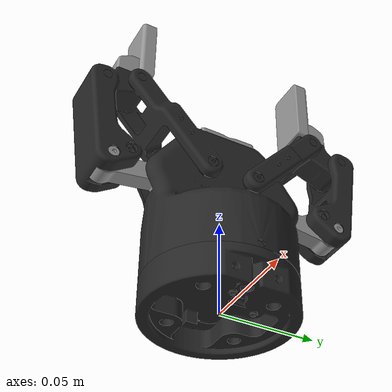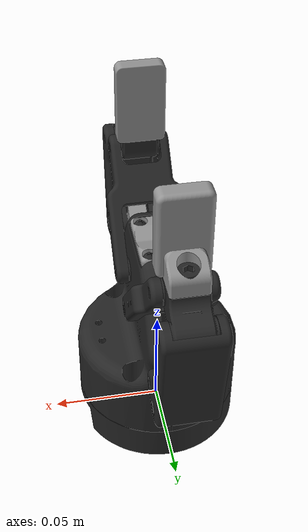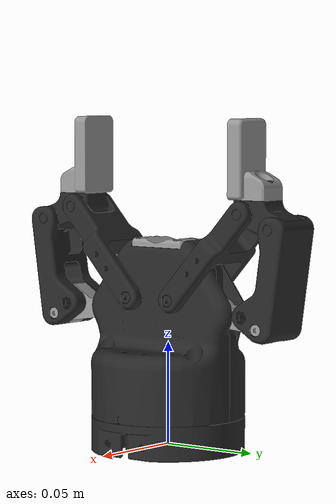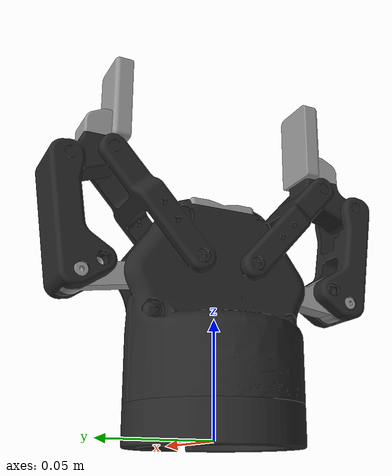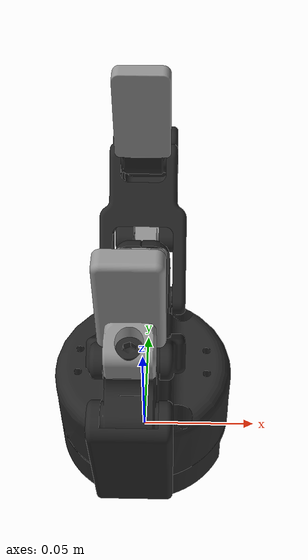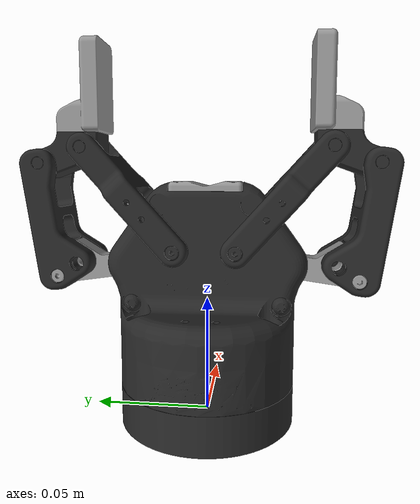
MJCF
<mujoco model="robotiq_2f85">
  <compiler angle="radian" meshdir="assets" autolimits="true"/>

  <asset>

    <material name="metal" rgba="0.58 0.58 0.58 1"/>
    <material name="silicone" rgba="0.1882 0.1882 0.1882 1"/>
    <material name="black" rgba="0.149 0.149 0.149 1"/>

    <mesh file="base.stl"/>
    <mesh file="base_coupling.stl"/>
    <mesh file="c-a01-85-open.stl"/>
    <mesh file="driver.stl"/>
    <mesh file="coupler.stl"/>
    <mesh file="spring_link.stl"/>
    <mesh file="follower.stl"/>
    <mesh file="tongue.stl"/>
  </asset>

  <default>
    <default class="2f85">
      <mesh scale="0.001 0.001 0.001"/>
      <general biastype="affine"/>

      <joint axis="0 0 1"/>
      <default class="driver">
        <joint range="0 0.9" armature="0.005" damping="0.1" solimplimit="0.95 0.99 0.001" solreflimit="0.005 1"/>
      </default>
      <default class="follower">
        <joint range="-0.872664 0.9" armature="0.001" solimplimit="0.95 0.99 0.001" solreflimit="0.005 1"/>
      </default>
      <default class="spring_link">
        <joint range="-0.29670597283 0.9" armature="0.001" stiffness="0.05" springref="2.62" damping="0.00125"/>
      </default>
      <default class="coupler">
        <joint range="-1.57 0" armature="0.001" solimplimit="0.95 0.99 0.001" solreflimit="0.005 1"/>
      </default>

      <default class="visual">
        <geom type="mesh" contype="0" conaffinity="0" group="2" material="black"/>
      </default>
      <default class="collision">
        <geom group="3" type="mesh" contype="0" conaffinity="0"/>
        <default class="pad_box1">
          <geom group="3" mass="1e-6" type="box" pos="0.043258 0 0.12" size="0.002 0.011 0.009375"
            solimp="0.99 0.995 0.01" solref="0.01 1" friction="1 0.005 0.0001" rgba="1.0 0.55 0.55 1" conaffinity="3"/>
        </default>
        <default class="pad_box2">
          <geom group="3" mass="1e-6" type="box" pos="0.041258 0 0.12875" size="0.004 0.011 0.01875"
            solimp="0.99 0.995 0.01" solref="0.01 1" friction="1 0.005 0.0001" rgba="0.0 0.45 0.45 1" conaffinity="3"/>
        </default>
      </default>
    </default>
  </default>

  <worldbody>
    <body name="base" childclass="2f85" quat="1 0 0 -1">
      <inertial mass="0.777441" pos="0 -2.70394e-05 0.0354675" quat="1 0 0 0"
        diaginertia="0.000260285 0.000225381 0.000152708"/>
      <geom class="visual" pos="0 0 0.0108" quat="0 0 0 1" mesh="base"/>
      <geom class="visual" pos="0 0 0.004" quat="1 -1 0 0" mesh="base_coupling"/>
      <geom class="visual" pos="0 0 0.0108" quat="1 0 0 0" material="metal" mesh="c-a01-85-open"/>
      <geom name="hand_capsule" class="collision" type="capsule" conaffinity="1" size="0.04 0.06" rgba="1 1 1 0.3"
        pos="0 0 0.01"/>

      <!-- Left-hand side 4-bar linkage -->
      <body name="left_driver" pos="-0.0306011 0.00475 0.0657045" quat="1 -1 0 0">
        <inertial mass="0.00899563" pos="0 0.0177547 0.00107314" quat="0.681301 0.732003 0 0"
          diaginertia="1.72352e-06 1.60906e-06 3.22006e-07"/>
        <joint name="left_driver_joint" class="driver"/>
        <geom class="visual" pos="0.0306011 0.0549045 -0.0047" quat="1 1 0 0" material="metal" mesh="driver"/>
        <body name="left_coupler" pos="-0.0314249 0.00453223 -0.0102" quat="0 0 0 1">
          <inertial mass="0.0140974" pos="0 0.00301209 0.0232175" quat="0.705636 -0.0455904 0.0455904 0.705636"
            diaginertia="4.16206e-06 3.52216e-06 8.88131e-07"/>
          <geom class="visual" pos="-0.062026 -0.0503723 0.0055" quat="1 -1 0 0" mesh="coupler"/>
          <geom name="left_coupler_col_1" class="pad_box2" pos="0.005 0.025 0.01" quat="1 1 -0.1 0" type="capsule"
            size="0.009 0.02"/>
          <geom name="left_coupler_col_2" class="pad_box2" pos="0.005 0.025 0.001" quat="1 1 -0.1 0" type="capsule"
            size="0.009 0.02"/>
        </body>
      </body>
      <body name="left_spring_link" pos="-0.0127 -0.012 0.07222" quat="1 -1 0 0">
        <inertial mass="0.0221642" pos="-8.65005e-09 0.0181624 0.0212658" quat="0.663403 -0.244737 0.244737 0.663403"
          diaginertia="8.96853e-06 6.71733e-06 2.63931e-06"/>
        <joint name="left_spring_link_joint" class="spring_link"/>
        <geom class="visual" pos="0.0127 0.06142 0.01205" quat="1 1 0 0" type="mesh" mesh="spring_link"/>
        <body name="left_follower" pos="-0.0382079 -0.0425003 0.00295" quat="0 -1 0 0">
          <inertial mass="0.0125222" pos="0 -0.011046 0.0124786" quat="1 0.1664 0 0"
            diaginertia="2.67415e-06 2.4559e-06 6.02031e-07"/>
          <joint name="left_follower" class="follower"/>
          <geom class="visual" pos="0.0509079 -0.10392 -0.0091" quat="1 -1 0 0" type="mesh" mesh="follower"/>
          <geom class="visual" pos="0.0509079 -0.10392 -0.0091" quat="1 -1 0 0" type="mesh" material="metal"
            mesh="tongue"/>
          <geom name="left_follower_pad2" class="pad_box2" type="capsule" size="0.009 0.012 0.008"
            pos="-0.0035 -0.002 -0.009" quat="1 1 0 0"/>
          <body name="left_pad" pos="-0.0377897 -0.103916 -0.0091" quat="1 -1 0 0">
            <geom class="pad_box2" name="left_finger_pad"/>
          </body>
        </body>
      </body>
      <!-- Right-hand side 4-bar linkage -->
      <body name="right_driver" pos="0.0306011 -0.00475 0.0657045" quat="0 0 -1 1">
        <inertial mass="0.00899563" pos="2.96931e-12 0.0177547 0.00107314" quat="0.681301 0.732003 0 0"
          diaginertia="1.72352e-06 1.60906e-06 3.22006e-07"/>
        <joint name="right_driver_joint" class="driver"/>
        <geom class="visual" pos="0.0306011 0.0549045 -0.0047" quat="1 1 0 0" material="metal" mesh="driver"/>
        <body name="right_coupler" pos="-0.0314249 0.00453223 -0.0102" quat="0 0 0 1">
          <inertial mass="0.0140974" pos="0 0.00301209 0.0232175" quat="0.705636 -0.0455904 0.0455904 0.705636"
            diaginertia="4.16206e-06 3.52216e-06 8.88131e-07"/>
          <geom class="visual" pos="-0.062026 -0.0503723 0.0055" quat="1 -1 0 0" mesh="coupler"/>
          <geom name="right_coupler_col_1" class="pad_box2" pos="0.005 0.025 0.01" quat="1 1 -0.1 0" type="capsule"
            size="0.009 0.02"/>
          <geom name="right_coupler_col_2" class="pad_box2" pos="0.005 0.025 0.001" quat="1 1 -0.1 0" type="capsule"
            size="0.009 0.02"/>
        </body>
      </body>
      <body name="right_spring_link" pos="0.0127 0.012 0.07222" quat="0 0 -1 1">
        <inertial mass="0.0221642" pos="-8.65005e-09 0.0181624 0.0212658" quat="0.663403 -0.244737 0.244737 0.663403"
          diaginertia="8.96853e-06 6.71733e-06 2.63931e-06"/>
        <joint name="right_spring_link_joint" class="spring_link"/>
        <geom class="visual" pos="0.0127 0.06142 0.01205" quat="1 1 0 0" mesh="spring_link"/>
        <body name="right_follower" pos="-0.0382079 -0.0425003 0.00295" quat="0 -1 0 0">
          <inertial mass="0.0125222" pos="0 -0.011046 0.0124786" quat="1 0.1664 0 0"
            diaginertia="2.67415e-06 2.4559e-06 6.02031e-07"/>
          <joint name="right_follower_joint" class="follower"/>
          <geom class="visual" pos="0.0509079 -0.10392 -0.0091" quat="1 -1 0 0" material="metal" mesh="tongue"/>
          <geom class="visual" pos="0.0509079 -0.10392 -0.0091" quat="1 -1 0 0" mesh="follower"/>
          <geom name="right_follower_pad2" class="pad_box2" type="capsule" size="0.009 0.012 0.008"
            pos="-0.0035 -0.002 -0.009" quat="1 1 0 0"/>
          <body name="right_pad" pos="-0.0377897 -0.103916 -0.0091" quat="1 -1 0 0">
            <geom class="pad_box2" name="right_finger_pad"/>
          </body>
        </body>
      </body>
    </body>
  </worldbody>

  <contact>
    <exclude body1="base" body2="left_driver"/>
    <exclude body1="base" body2="right_driver"/>
    <exclude body1="base" body2="left_spring_link"/>
    <exclude body1="base" body2="right_spring_link"/>
    <exclude body1="right_coupler" body2="right_follower"/>
    <exclude body1="left_coupler" body2="left_follower"/>
  </contact>

  <equality>
    <connect anchor="-0.0179014 -0.00651468 0.0044" body1="right_follower" body2="right_coupler"
      solimp="0.95 0.99 0.001" solref="0.005 1"/>
    <connect anchor="-0.0179014 -0.00651468 0.0044" body1="left_follower" body2="left_coupler" solimp="0.95 0.99 0.001"
      solref="0.005 1"/>
    <joint joint1="right_driver_joint" joint2="left_driver_joint" polycoef="0 1 0 0 0" solimp="0.95 0.99 0.001"
      solref="0.005 1"/>
  </equality>

  <actuator>
    <general class="2f85" name="fingers_actuator" joint="left_driver_joint" forcerange="-5 5" ctrlrange="0 0.82"
      gainprm="100 0 0" biasprm="0 -100 -10"/>
  </actuator>
</mujoco>
